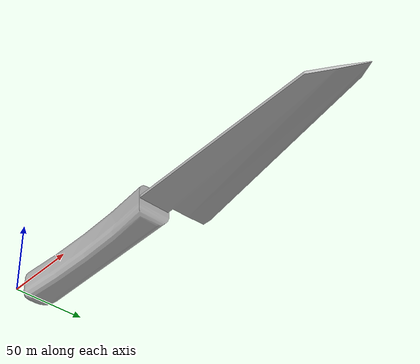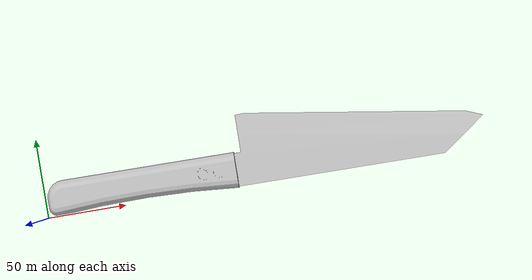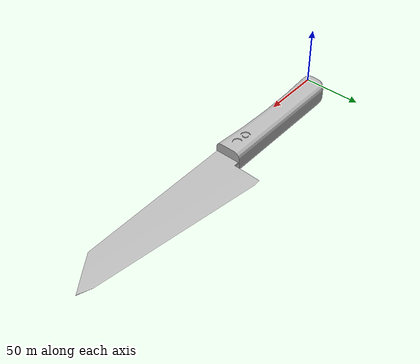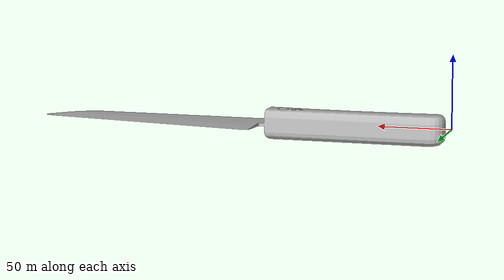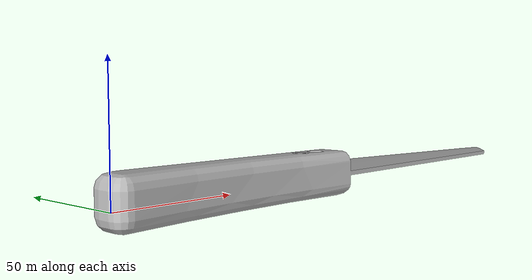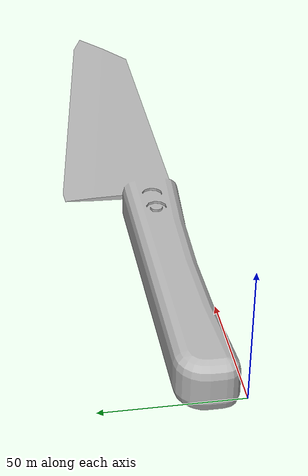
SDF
<sdf version="1.4">
    <model name="knife">
        <pose>3.000000 0.000000 1.000000 0.000000 -0.000000 0.000000</pose>
        <static>1</static>
        <link name="knife_link">
            <pose>0.000000 0.000000 0.000000 0.000000 -0.000000 0.000000</pose>

            <collision name="knife_collision">
                <pose>0.000000 0.000000 0.000000 0.000000 -0.000000 0.000000</pose>
                <geometry>
                    <mesh>
                        <uri>/home/furdek/catkin_ws/src/gazebo_pkg/models/knife/meshes/knife.stl</uri>
                        <scale>1 1 1</scale>
                    </mesh>
                </geometry>

            </collision>

            <visual name="knife_visual">
                <pose>0.000000 0.000000 0.000000 0.000000 -0.000000 0.000000</pose>
                <geometry>
                    <mesh>
                        <uri>/home/furdek/catkin_ws/src/gazebo_pkg/models/knife/meshes/knife.stl</uri>
                        <scale>1 1 1</scale>
                    </mesh>
                </geometry>
            </visual>
        </link>
    </model>
</sdf>
